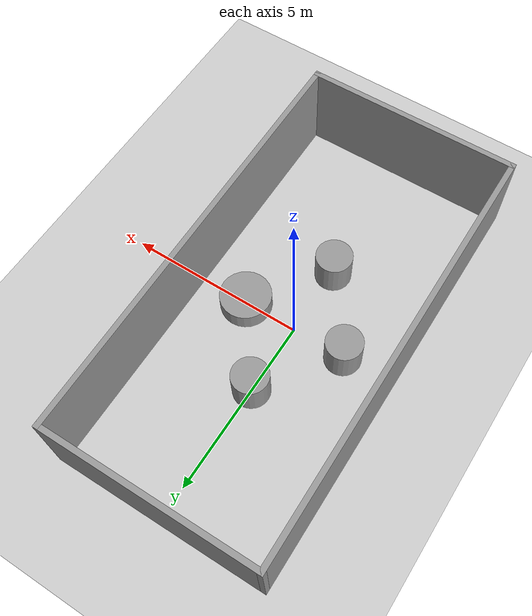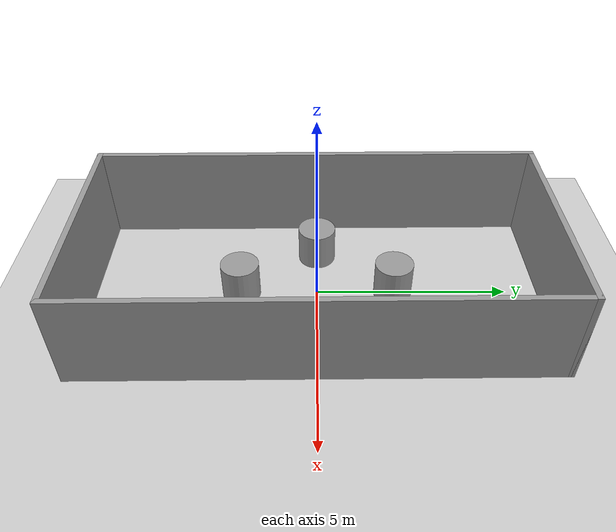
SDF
<sdf version="1.7">
 <world name="default">
  <light name="sun" type="directional">
   <pose>0 0 10 0 -0 0</pose>
   <diffuse>0.8 0.8 0.8 1</diffuse>
   <specular>0.2 0.2 0.2 1</specular>
   <attenuation>
    <range>1000</range>
    <constant>0.9</constant>
    <linear>0.01</linear>
    <quadratic>0.001</quadratic>
   </attenuation>
   <direction>-0.5 0.1 -0.9</direction>
   <spot><inner_angle>0</inner_angle><outer_angle>0</outer_angle><falloff>0</falloff></spot>
  </light>
  <model name="ground_plane">
   <static>1</static>
   <link name="link">
    <collision name="collision">
     <geometry><plane><normal>0 0 1</normal><size>100 100</size></plane></geometry>
     <surface>
      <contact><collide_bitmask>65535</collide_bitmask></contact>
      <friction><ode><mu>100</mu><mu2>50</mu2></ode></friction>
     </surface>
    </collision>
    <visual name="visual">
     <cast_shadows>0</cast_shadows>
     <geometry><plane><normal>0 0 1</normal><size>100 100</size></plane></geometry>
     <material>
      <script><uri>file://media/materials/scripts/gazebo.material</uri><name>Gazebo/Grey</name></script>
     </material>
    </visual>
   </link>
  </model>
  <gravity>0 0 -9.8</gravity>
  <magnetic_field>6e-06 2.3e-05 -4.2e-05</magnetic_field>
  <atmosphere type="adiabatic"/>
  <physics name="default_physics" default="0" type="ode">
   <max_step_size>0.001</max_step_size>
   <real_time_factor>1</real_time_factor>
   <real_time_update_rate>1000</real_time_update_rate>
  </physics>
  <scene><ambient>0.4 0.4 0.4 1</ambient><background>0.7 0.7 0.7 1</background><shadows>1</shadows></scene>
  <spherical_coordinates>
   <surface_model>EARTH_WGS84</surface_model>
   <latitude_deg>0</latitude_deg>
   <longitude_deg>0</longitude_deg>
   <elevation>0</elevation>
   <heading_deg>0</heading_deg>
  </spherical_coordinates>
  <model name="voronoi">
   <pose>-0 4e-06 0 0 0 -1.56314</pose>
   <link name="Wall_1">
    <collision name="Wall_1_Collision">
     <geometry><box><size>6 0.15 2.5</size></box></geometry>
     <pose>0 0 1.25 0 -0 0</pose>
    </collision>
    <visual name="Wall_1_Visual">
     <pose>0 0 1.25 0 -0 0</pose>
     <geometry><box><size>6 0.15 2.5</size></box></geometry>
     <material>
      <script><uri>file://media/materials/scripts/gazebo.material</uri><name>Gazebo/Grey</name></script>
      <ambient>1 1 1 1</ambient>
     </material>
     <meta><layer>0</layer></meta>
    </visual>
    <pose>-5.925 0 0 0 -0 1.5708</pose>
   </link>
   <link name="Wall_2">
    <collision name="Wall_2_Collision">
     <geometry><box><size>12 0.15 2.5</size></box></geometry>
     <pose>0 0 1.25 0 -0 0</pose>
    </collision>
    <visual name="Wall_2_Visual">
     <pose>0 0 1.25 0 -0 0</pose>
     <geometry><box><size>12 0.15 2.5</size></box></geometry>
     <material>
      <script><uri>file://media/materials/scripts/gazebo.material</uri><name>Gazebo/Grey</name></script>
      <ambient>1 1 1 1</ambient>
     </material>
     <meta><layer>0</layer></meta>
    </visual>
    <pose>1e-06 2.925 0 0 -0 0</pose>
   </link>
   <link name="Wall_3">
    <collision name="Wall_3_Collision">
     <geometry><box><size>6 0.15 2.5</size></box></geometry>
     <pose>0 0 1.25 0 -0 0</pose>
    </collision>
    <visual name="Wall_3_Visual">
     <pose>0 0 1.25 0 -0 0</pose>
     <geometry><box><size>6 0.15 2.5</size></box></geometry>
     <material>
      <script><uri>file://media/materials/scripts/gazebo.material</uri><name>Gazebo/Grey</name></script>
      <ambient>1 1 1 1</ambient>
     </material>
     <meta><layer>0</layer></meta>
    </visual>
    <pose>5.925 0 0 0 -0 -1.5708</pose>
   </link>
   <link name="Wall_4">
    <collision name="Wall_4_Collision">
     <geometry><box><size>12 0.15 2.5</size></box></geometry>
     <pose>0 0 1.25 0 -0 0</pose>
    </collision>
    <visual name="Wall_4_Visual">
     <pose>0 0 1.25 0 -0 0</pose>
     <geometry><box><size>12 0.15 2.5</size></box></geometry>
     <material>
      <script><uri>file://media/materials/scripts/gazebo.material</uri><name>Gazebo/Grey</name></script>
      <ambient>1 1 1 1</ambient>
     </material>
     <meta><layer>0</layer></meta>
    </visual>
    <pose>1e-06 -2.925 0 0 -0 3.14159</pose>
   </link>
   <static>1</static>
  </model>
  <model name="unit_cylinder_0">
   <pose>0 2 0.499991 0 -0 0</pose>
   <link name="link">
    <inertial>
     <mass>1</mass>
     <inertia><ixx>0.145833</ixx><ixy>0</ixy><ixz>0</ixz><iyy>0.145833</iyy><iyz>0</iyz><izz>0.125</izz></inertia>
    </inertial>
    <collision name="collision">
     <geometry><cylinder><radius>0.5</radius><length>1</length></cylinder></geometry>
    </collision>
    <visual name="visual">
     <geometry><cylinder><radius>0.5</radius><length>1</length></cylinder></geometry>
     <material>
      <script><name>Gazebo/Grey</name><uri>file://media/materials/scripts/gazebo.material</uri></script>
     </material>
    </visual>
   </link>
  </model>
  <model name="unit_cylinder_1">
   <pose>-1.5 -0 0.499991 0 -0 0</pose>
   <link name="link">
    <inertial>
     <mass>1</mass>
     <inertia><ixx>0.145833</ixx><ixy>0</ixy><ixz>0</ixz><iyy>0.145833</iyy><iyz>0</iyz><izz>0.125</izz></inertia>
    </inertial>
    <collision name="collision">
     <geometry><cylinder><radius>0.5</radius><length>1</length></cylinder></geometry>
    </collision>
    <visual name="visual">
     <geometry><cylinder><radius>0.5</radius><length>1</length></cylinder></geometry>
     <material>
      <script><name>Gazebo/Grey</name><uri>file://media/materials/scripts/gazebo.material</uri></script>
     </material>
    </visual>
   </link>
  </model>
  <model name="unit_cylinder_2">
   <pose>0 -2 0.499991 0 -0 0</pose>
   <link name="link">
    <inertial>
     <mass>1</mass>
     <inertia><ixx>0.145833</ixx><ixy>0</ixy><ixz>0</ixz><iyy>0.145833</iyy><iyz>0</iyz><izz>0.125</izz></inertia>
    </inertial>
    <collision name="collision">
     <geometry><cylinder><radius>0.5</radius><length>1</length></cylinder></geometry>
    </collision>
    <visual name="visual">
     <geometry><cylinder><radius>0.5</radius><length>1</length></cylinder></geometry>
     <material>
      <script><name>Gazebo/Grey</name><uri>file://media/materials/scripts/gazebo.material</uri></script>
     </material>
    </visual>
   </link>
  </model>
  <model name="unit_cylinder">
   <link name="link">
    <inertial>
     <mass>1</mass>
     <inertia><ixx>0.145833</ixx><ixy>0</ixy><ixz>0</ixz><iyy>0.145833</iyy><iyz>0</iyz><izz>0.125</izz></inertia>
    </inertial>
    <visual name="visual">
     <geometry><cylinder><radius>0.699903</radius><length>1</length></cylinder></geometry>
     <material>
      <script><name>Gazebo/Grey</name><uri>file://media/materials/scripts/gazebo.material</uri></script>
      <shader type="pixel"/>
     </material>
    </visual>
    <collision name="collision">
     <geometry><cylinder><radius>0.699903</radius><length>1</length></cylinder></geometry>
     <surface>
      <friction>
       <ode><mu>1</mu><mu2>1</mu2><fdir1>0 0 0</fdir1><slip1>0</slip1><slip2>0</slip2></ode>
       <torsional>
        <coefficient>1</coefficient>
        <patch_radius>0</patch_radius>
        <surface_radius>0</surface_radius>
        <use_patch_radius>1</use_patch_radius>
        <ode><slip>0</slip></ode>
       </torsional>
      </friction>
      <bounce><restitution_coefficient>0</restitution_coefficient><threshold>1e+06</threshold></bounce>
      <contact>
       <collide_without_contact>0</collide_without_contact>
       <collide_without_contact_bitmask>1</collide_without_contact_bitmask>
       <collide_bitmask>1</collide_bitmask>
       <ode>
        <soft_cfm>0</soft_cfm>
        <soft_erp>0.2</soft_erp>
        <kp>1e+13</kp>
        <kd>1</kd>
        <max_vel>0.01</max_vel>
        <min_depth>0</min_depth>
       </ode>
       <bullet>
        <split_impulse>1</split_impulse>
        <split_impulse_penetration_threshold>-0.01</split_impulse_penetration_threshold>
        <soft_cfm>0</soft_cfm>
        <soft_erp>0.2</soft_erp>
        <kp>1e+13</kp>
        <kd>1</kd>
       </bullet>
      </contact>
     </surface>
    </collision>
   </link>
   <static>1</static>
   <pose>1.5 0 0 0 -0 0</pose>
  </model>
 </world>
</sdf>
